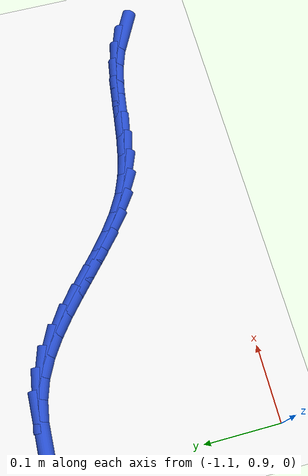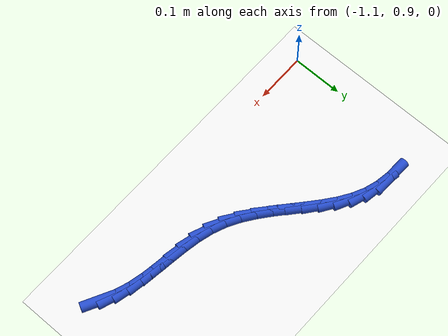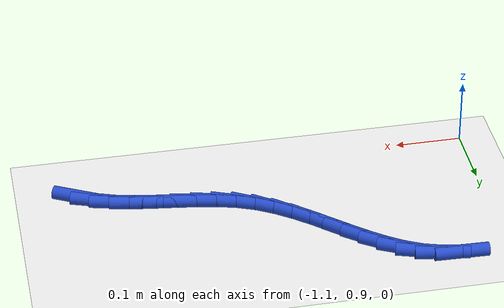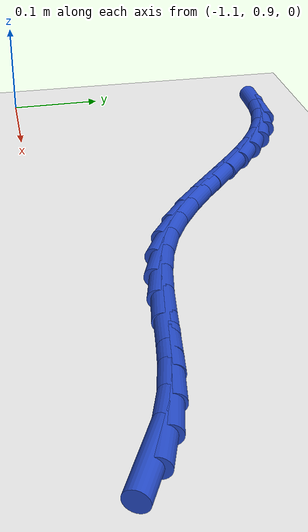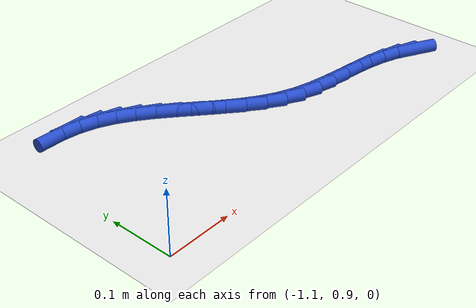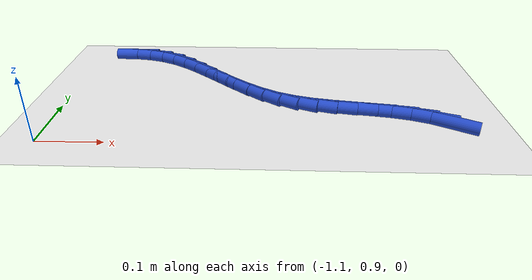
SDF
<sdf version="1.6">
 <world name="default">
  <model name="ground_plane">
   <static>1</static>
   <link name="link">
    <collision name="collision">
     <geometry><plane><normal>0 0 1</normal><size>100 100</size></plane></geometry>
     <surface><friction><ode><mu>100</mu><mu2>50</mu2></ode></friction></surface>
    </collision>
    <visual name="visual">
     <cast_shadows>0</cast_shadows>
     <geometry><plane><normal>0 0 1</normal><size>100 100</size></plane></geometry>
     <material>
      <script><uri>file://media/materials/scripts/gazebo.material</uri><name>Gazebo/WhiteGlow</name></script>
     </material>
    </visual>
   </link>
  </model>
  <model name="line">
   <link name="link_39">
    <pose>-0.5027376001210196 0.9533894861374914 0.01 0 1.57 -0.4777440140927641</pose>
    <collision name="collision">
     <geometry><cylinder><radius>0.01</radius><length>0.08</length></cylinder></geometry>
    </collision>
    <visual name="visual">
     <material>
      <script><name>Gazebo/Blue</name><uri>file://media/materials/scripts/gazebo.material</uri></script>
     </material>
     <geometry><cylinder><radius>0.01</radius><length>0.08</length></cylinder></geometry>
    </visual>
   </link>
   <link name="link_40">
    <pose>-0.528099369246484 0.9665204600480207 0.01 0 1.57 -0.3308523900748825</pose>
    <collision name="collision">
     <geometry><cylinder><radius>0.01</radius><length>0.08</length></cylinder></geometry>
    </collision>
    <visual name="visual">
     <material>
      <script><name>Gazebo/Blue</name><uri>file://media/materials/scripts/gazebo.material</uri></script>
     </material>
     <geometry><cylinder><radius>0.01</radius><length>0.08</length></cylinder></geometry>
    </visual>
   </link>
   <link name="link_41">
    <pose>-0.5552469599160308 0.9758450477403315 0.01 0 1.57 -0.2241033917324248</pose>
    <collision name="collision">
     <geometry><cylinder><radius>0.01</radius><length>0.08</length></cylinder></geometry>
    </collision>
    <visual name="visual">
     <material>
      <script><name>Gazebo/Blue</name><uri>file://media/materials/scripts/gazebo.material</uri></script>
     </material>
     <geometry><cylinder><radius>0.01</radius><length>0.08</length></cylinder></geometry>
    </visual>
   </link>
   <link name="link_42">
    <pose>-0.583749342786046 0.9823416525138474 0.01 0 1.57 -0.15801478090528873</pose>
    <collision name="collision">
     <geometry><cylinder><radius>0.01</radius><length>0.08</length></cylinder></geometry>
    </collision>
    <visual name="visual">
     <material>
      <script><name>Gazebo/Blue</name><uri>file://media/materials/scripts/gazebo.material</uri></script>
     </material>
     <geometry><cylinder><radius>0.01</radius><length>0.08</length></cylinder></geometry>
    </visual>
   </link>
   <link name="link_43">
    <pose>-0.6131578275645698 0.9870276942802381 0.01 0 1.57 -0.1296151906768664</pose>
    <collision name="collision">
     <geometry><cylinder><radius>0.01</radius><length>0.08</length></cylinder></geometry>
    </collision>
    <visual name="visual">
     <material>
      <script><name>Gazebo/Blue</name><uri>file://media/materials/scripts/gazebo.material</uri></script>
     </material>
     <geometry><cylinder><radius>0.01</radius><length>0.08</length></cylinder></geometry>
    </visual>
   </link>
   <link name="link_44">
    <pose>-0.6430237239596437 0.9909205929511744 0.01 0 1.57 -0.13695247013905812</pose>
    <collision name="collision">
     <geometry><cylinder><radius>0.01</radius><length>0.08</length></cylinder></geometry>
    </collision>
    <visual name="visual">
     <material>
      <script><name>Gazebo/Blue</name><uri>file://media/materials/scripts/gazebo.material</uri></script>
     </material>
     <geometry><cylinder><radius>0.01</radius><length>0.08</length></cylinder></geometry>
    </visual>
   </link>
   <link name="link_45">
    <pose>-0.6728983416793081 0.995037768438326 0.01 0 1.57 -0.18008757190425403</pose>
    <collision name="collision">
     <geometry><cylinder><radius>0.01</radius><length>0.08</length></cylinder></geometry>
    </collision>
    <visual name="visual">
     <material>
      <script><name>Gazebo/Blue</name><uri>file://media/materials/scripts/gazebo.material</uri></script>
     </material>
     <geometry><cylinder><radius>0.01</radius><length>0.08</length></cylinder></geometry>
    </visual>
   </link>
   <link name="link_46">
    <pose>-0.7023329904316039 1.0003966406533638 0.01 0 1.57 -0.26078962087005764</pose>
    <collision name="collision">
     <geometry><cylinder><radius>0.01</radius><length>0.08</length></cylinder></geometry>
    </collision>
    <visual name="visual">
     <material>
      <script><name>Gazebo/Blue</name><uri>file://media/materials/scripts/gazebo.material</uri></script>
     </material>
     <geometry><cylinder><radius>0.01</radius><length>0.08</length></cylinder></geometry>
    </visual>
   </link>
   <link name="link_47">
    <pose>-0.7308789799245717 1.0080146295079573 0.01 0 1.57 -0.38032868947462684</pose>
    <collision name="collision">
     <geometry><cylinder><radius>0.01</radius><length>0.08</length></cylinder></geometry>
    </collision>
    <visual name="visual">
     <material>
      <script><name>Gazebo/Blue</name><uri>file://media/materials/scripts/gazebo.material</uri></script>
     </material>
     <geometry><cylinder><radius>0.01</radius><length>0.08</length></cylinder></geometry>
    </visual>
   </link>
   <link name="link_48">
    <pose>-0.7580934111212514 1.018894793010358 0.01 0 1.57 -0.5106499918133155</pose>
    <collision name="collision">
     <geometry><cylinder><radius>0.01</radius><length>0.08</length></cylinder></geometry>
    </collision>
    <visual name="visual">
     <material>
      <script><name>Gazebo/Blue</name><uri>file://media/materials/scripts/gazebo.material</uri></script>
     </material>
     <geometry><cylinder><radius>0.01</radius><length>0.08</length></cylinder></geometry>
    </visual>
   </link>
   <link name="link_49">
    <pose>-0.7838273211551451 1.0333112482237796 0.01 0 1.57 -0.6105952761726736</pose>
    <collision name="collision">
     <geometry><cylinder><radius>0.01</radius><length>0.08</length></cylinder></geometry>
    </collision>
    <visual name="visual">
     <material>
      <script><name>Gazebo/Blue</name><uri>file://media/materials/scripts/gazebo.material</uri></script>
     </material>
     <geometry><cylinder><radius>0.01</radius><length>0.08</length></cylinder></geometry>
    </visual>
   </link>
   <link name="link_50">
    <pose>-0.8083589712020148 1.0504786267571098 0.01 0 1.57 -0.6782524625308244</pose>
    <collision name="collision">
     <geometry><cylinder><radius>0.01</radius><length>0.08</length></cylinder></geometry>
    </collision>
    <visual name="visual">
     <material>
      <script><name>Gazebo/Blue</name><uri>file://media/materials/scripts/gazebo.material</uri></script>
     </material>
     <geometry><cylinder><radius>0.01</radius><length>0.08</length></cylinder></geometry>
    </visual>
   </link>
   <link name="link_51">
    <pose>-0.8320002453536192 1.0695281777620058 0.01 0 1.57 -0.7159504403387272</pose>
    <collision name="collision">
     <geometry><cylinder><radius>0.01</radius><length>0.08</length></cylinder></geometry>
    </collision>
    <visual name="visual">
     <material>
      <script><name>Gazebo/Blue</name><uri>file://media/materials/scripts/gazebo.material</uri></script>
     </material>
     <geometry><cylinder><radius>0.01</radius><length>0.08</length></cylinder></geometry>
    </visual>
   </link>
   <link name="link_52">
    <pose>-0.8550630277017169 1.0895911503901243 0.01 0 1.57 -0.7252776468707932</pose>
    <collision name="collision">
     <geometry><cylinder><radius>0.01</radius><length>0.08</length></cylinder></geometry>
    </collision>
    <visual name="visual">
     <material>
      <script><name>Gazebo/Blue</name><uri>file://media/materials/scripts/gazebo.material</uri></script>
     </material>
     <geometry><cylinder><radius>0.01</radius><length>0.08</length></cylinder></geometry>
    </visual>
   </link>
   <link name="link_53">
    <pose>-0.877859202338067 1.109798793793123 0.01 0 1.57 -0.7062282164427797</pose>
    <collision name="collision">
     <geometry><cylinder><radius>0.01</radius><length>0.08</length></cylinder></geometry>
    </collision>
    <visual name="visual">
     <material>
      <script><name>Gazebo/Blue</name><uri>file://media/materials/scripts/gazebo.material</uri></script>
     </material>
     <geometry><cylinder><radius>0.01</radius><length>0.08</length></cylinder></geometry>
    </visual>
   </link>
   <link name="link_54">
    <pose>-0.9007006533544285 1.1292823571226596 0.01 0 1.57 -0.6569306301226311</pose>
    <collision name="collision">
     <geometry><cylinder><radius>0.01</radius><length>0.08</length></cylinder></geometry>
    </collision>
    <visual name="visual">
     <material>
      <script><name>Gazebo/Blue</name><uri>file://media/materials/scripts/gazebo.material</uri></script>
     </material>
     <geometry><cylinder><radius>0.01</radius><length>0.08</length></cylinder></geometry>
    </visual>
   </link>
   <link name="link_55">
    <pose>-0.9238992648425601 1.1471730895303913 0.01 0 1.57 -0.5738727392508818</pose>
    <collision name="collision">
     <geometry><cylinder><radius>0.01</radius><length>0.08</length></cylinder></geometry>
    </collision>
    <visual name="visual">
     <material>
      <script><name>Gazebo/Blue</name><uri>file://media/materials/scripts/gazebo.material</uri></script>
     </material>
     <geometry><cylinder><radius>0.01</radius><length>0.08</length></cylinder></geometry>
    </visual>
   </link>
   <link name="link_56">
    <pose>-0.9477669208942208 1.1626022401679745 0.01 0 1.57 -0.4531141646685122</pose>
    <collision name="collision">
     <geometry><cylinder><radius>0.01</radius><length>0.08</length></cylinder></geometry>
    </collision>
    <visual name="visual">
     <material>
      <script><name>Gazebo/Blue</name><uri>file://media/materials/scripts/gazebo.material</uri></script>
     </material>
     <geometry><cylinder><radius>0.01</radius><length>0.08</length></cylinder></geometry>
    </visual>
   </link>
   <link name="link_57">
    <pose>-0.9726155056011692 1.1747010581870674 0.01 0 1.57 -0.30061159492986833</pose>
    <collision name="collision">
     <geometry><cylinder><radius>0.01</radius><length>0.08</length></cylinder></geometry>
    </collision>
    <visual name="visual">
     <material>
      <script><name>Gazebo/Blue</name><uri>file://media/materials/scripts/gazebo.material</uri></script>
     </material>
     <geometry><cylinder><radius>0.01</radius><length>0.08</length></cylinder></geometry>
    </visual>
   </link>
   <link name="link_58">
    <pose>-0.9986831664420575 1.1827822023384595 0.01 0 1.57 -0.15334032017988866</pose>
    <collision name="collision">
     <geometry><cylinder><radius>0.01</radius><length>0.08</length></cylinder></geometry>
    </collision>
    <visual name="visual">
     <material>
      <script><name>Gazebo/Blue</name><uri>file://media/materials/scripts/gazebo.material</uri></script>
     </material>
     <geometry><cylinder><radius>0.01</radius><length>0.08</length></cylinder></geometry>
    </visual>
   </link>
   <link name="link_59">
    <pose>-1.0258722916813732 1.1869843788665806 0.01 0 1.57 -0.024780535889872394</pose>
    <collision name="collision">
     <geometry><cylinder><radius>0.01</radius><length>0.08</length></cylinder></geometry>
    </collision>
    <visual name="visual">
     <material>
      <script><name>Gazebo/Blue</name><uri>file://media/materials/scripts/gazebo.material</uri></script>
     </material>
     <geometry><cylinder><radius>0.01</radius><length>0.08</length></cylinder></geometry>
    </visual>
   </link>
  </model>
 </world>
</sdf>
